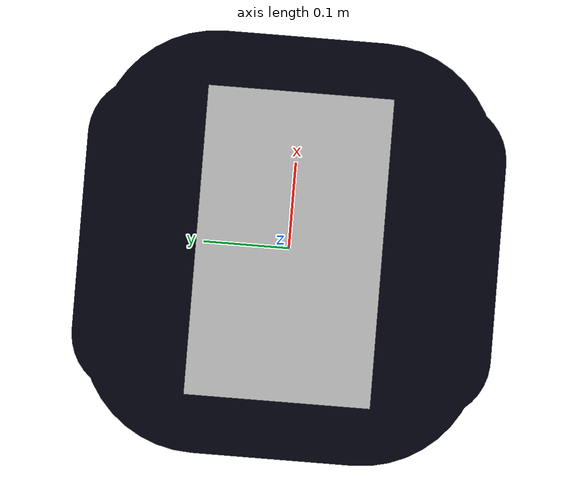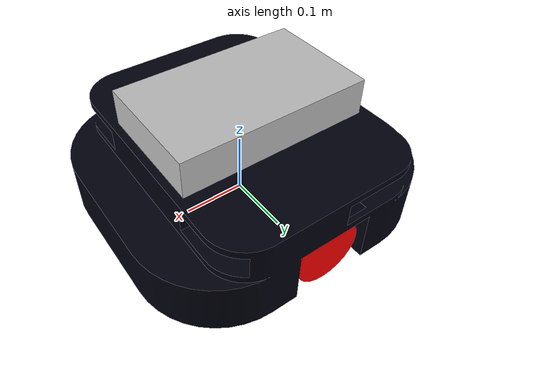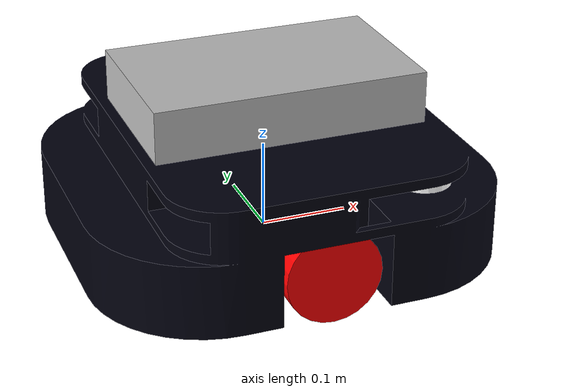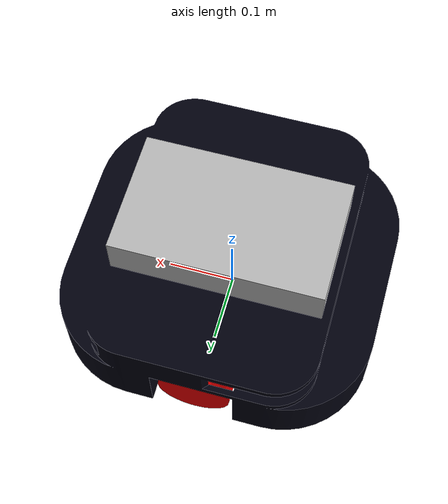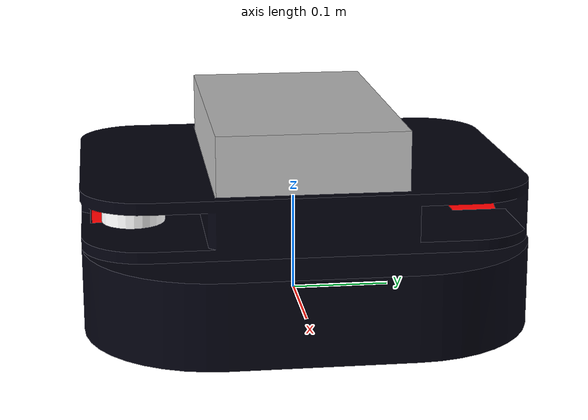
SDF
<?xml version="1.0" ?>

<sdf version="1.8">

    <model name="my_robot" canonical_link="base_link">
            <pose>0 0 0 0 0 0</pose>

            <!-- Base Link -->
            <link name="base_link">
                <pose>0 0 0 0 0 0</pose>
                <inertial>
                    <mass>18.0</mass>
                    <inertia>
                        <ixx>0.350412</ixx>
                        <ixy>0</ixy>
                        <ixz>0</ixz>
                        <iyy>0.60531</iyy>
                        <iyz>0</iyz>
                        <izz>0.31539</izz>
                    </inertia>
                </inertial>
                <visual name="visual">
                    <geometry>
                        <mesh>
                            <uri>file://agv_base.dae</uri>
                        </mesh>
                    </geometry>
                    <pose>0 0 0 0 0 1.5708</pose>
                    <material>
                        <ambient>0 0 0.0 1</ambient>
                        <diffuse>0 0 0.05 1</diffuse>
                        <specular>0 0 0.05 1</specular>
                    </material>
                </visual>
                <collision name="collision">
                    <geometry>
                        <mesh>
                            <uri>file://agv_base.dae</uri>
                        </mesh>
                    </geometry>
                    <pose>0 0 0 0 0 1.5708</pose>
                </collision>
            </link>

            <!-- Right Wheel Link -->
            <link name="left_wheel_link">
                <pose relative_to="base_link">0 0.183 0.041 0 0 0</pose>
                <inertial>
                    <mass>0.5</mass>
                    <inertia>
                        <ixx>0.000768</ixx>
                        <ixy>0</ixy>
                        <ixz>0</ixz>
                        <iyy>0.000768</iyy>
                        <iyz>0</iyz>
                        <izz>0.000702</izz>
                    </inertia>
                </inertial>
                <visual name="visual">
                    <geometry>
                        <cylinder>
                            <radius>0.053</radius>
                            <length>0.05</length>
                        </cylinder>
                    </geometry>
                    <pose>0 0 0 1.5708 0 0</pose>
                    <material>
                        <ambient>1 0 0 1</ambient>
                        <diffuse>1 0 0 1</diffuse>
                        <specular>1 0 0 1</specular>
                    </material>
                </visual>
                <collision name="collision">
                    <geometry>
                        <cylinder>
                            <radius>0.053</radius>
                            <length>0.05</length>
                        </cylinder>
                    </geometry>
                    <surface>
                        <friction>
                            <ode>
                                <mu>0.5</mu>
                                <mu2>0.5</mu2>
                            </ode>
                        </friction>
                    </surface>
                    <pose>0 0 0 1.5708 0 0</pose>
                </collision>
            </link>

            <!-- Left Wheel Link -->
            <link name="right_wheel_link">
                <pose relative_to="base_link">0 -0.183 0.041 0 0 0</pose>
                <inertial>
                    <mass>0.5</mass>
                    <inertia>
                        <ixx>0.000768</ixx>
                        <ixy>0</ixy>
                        <ixz>0</ixz>
                        <iyy>0.000768</iyy>
                        <iyz>0</iyz>
                        <izz>0.000702</izz>
                    </inertia>
                </inertial>
                <visual name="visual">
                    <geometry>
                        <cylinder>
                            <radius>0.053</radius>
                            <length>0.05</length>
                        </cylinder>
                    </geometry>
                    <pose>0 0 0 1.5708 0 0</pose>
                    <material>
                        <ambient>1 0 0 1</ambient>
                        <diffuse>1 0 0 1</diffuse>
                        <specular>1 0 0 1</specular>
                    </material>
                </visual>
                <collision name="collision">
                    <geometry>
                        <cylinder>
                            <radius>0.053</radius>
                            <length>0.05</length>
                        </cylinder>
                    </geometry>
                    <surface>
                        <friction>
                            <ode>
                                <mu>0.5</mu>
                                <mu2>0.5</mu2>
                            </ode>
                        </friction>
                    </surface>
                    <pose>0 0 0 1.5708 0 0</pose>
                </collision>
            </link>

            <!-- Right LiDAR Link -->
            <link name="lidar_link_right">
                <pose relative_to="base_link">0.115 -0.16789 0.12 0 0 0</pose>
                <visual name="visual">
                    <geometry>
                        <cylinder>
                            <radius>0.03</radius>
                            <length>0.015</length>
                        </cylinder>
                    </geometry>
                    <material>
                        <ambient>1 1 1 1</ambient>
                        <diffuse>1 1 1 1</diffuse>
                        <specular>1 1 1 1</specular>
                    </material>
                </visual>
                <collision name="collision">
                    <geometry>
                        <cylinder>
                            <radius>0.03</radius>
                            <length>0.015</length>
                        </cylinder>
                    </geometry>
                </collision>
                <sensor name="gpu_lidar1" type="gpu_lidar">
                    <pose>0 0 0 0 0 0</pose>
                    <topic>lidar1</topic>
                    <update_rate>10</update_rate>
                    <ray>
                        <scan>
                            <horizontal>
                                <samples>640</samples>
                                <resolution>1</resolution>
                                <min_angle>-3.14</min_angle>
                                <max_angle>3.14</max_angle>
                            </horizontal>
                            <vertical>
                                <samples>1</samples>
                                <resolution>0.01</resolution>
                                <min_angle>0</min_angle>
                                <max_angle>0</max_angle>
                            </vertical>
                        </scan>
                        <range>
                            <min>0.08</min>
                            <max>10.0</max>
                            <resolution>0.01</resolution>
                        </range>
                    </ray>
                    <always_on>1</always_on>
                    <visualize>true</visualize>
                </sensor>
            </link>

            <!-- Left LiDAR Link -->
            <link name="lidar_link_left">
                <pose relative_to="base_link">-0.115 0.16789 0.12 0 0 0</pose>
                <visual name="visual">
                    <geometry>
                        <cylinder>
                            <radius>0.03</radius>
                            <length>0.015</length>
                        </cylinder>
                    </geometry>
                    <material>
                        <ambient>1 1 1 1</ambient>
                        <diffuse>1 1 1 1</diffuse>
                        <specular>1 1 1 1</specular>
                    </material>
                </visual>
                <collision name="collision">
                    <geometry>
                        <cylinder>
                            <radius>0.03</radius>
                            <length>0.015</length>
                        </cylinder>
                    </geometry>
                </collision>
                <sensor name="gpu_lidar2" type="gpu_lidar">
                    <pose>0 0 0 0 0 0</pose>
                    <topic>lidar2</topic>
                    <update_rate>10</update_rate>
                    <ray>
                        <scan>
                            <horizontal>
                                <samples>640</samples>
                                <resolution>1</resolution>
                                <min_angle>-3.14</min_angle>
                                <max_angle>3.14</max_angle>
                            </horizontal>
                            <vertical>
                                <samples>1</samples>
                                <resolution>0.01</resolution>
                                <min_angle>0</min_angle>
                                <max_angle>0</max_angle>
                            </vertical>
                        </scan>
                        <range>
                            <min>0.08</min>
                            <max>10.0</max>
                            <resolution>0.01</resolution>
                        </range>
                    </ray>
                    <always_on>1</always_on>
                    <visualize>true</visualize>
                </sensor>
            </link>

            <!-- Lift Link -->
            <link name="lift_link">
                <pose>0 0 0.15 0 0 1.5708</pose>
                <inertial>
                    <mass>3.0</mass>
                    <inertia>
                        <ixx>0.025909</ixx>
                        <ixy>0</ixy>
                        <ixz>0</ixz>
                        <iyy>0.031873</iyy>
                        <iyz>0</iyz>
                        <izz>0.010964</izz>
                    </inertia>
                </inertial>
                <visual name="visual">
                    <geometry>
                        <box>
                            <size>0.184 0.306 0.1</size>
                        </box>
                    </geometry>
                    <material>
                        <ambient>0.75 0.75 0.75 1</ambient>
                        <diffuse>0.75 0.75 0.75 1</diffuse>
                        <specular>0.75 0.75 0.75 1</specular>
                    </material>
                </visual>
                <collision name="collision">
                    <geometry>
                        <box>
                            <size>0.184 0.306 0.1</size>
                        </box>
                    </geometry>
                </collision>
            </link>

            <!-- Joints -->
            <joint name="base_right_wheel_joint" type="revolute">
                <parent>base_link</parent>
                <child>right_wheel_link</child>
                <axis>
                    <xyz>0 1 0</xyz>
                    <limit>
                        <lower>-1.79769e+308</lower>
                        <upper>1.79769e+308</upper>
                    </limit>
                </axis>
            </joint>

            <joint name="base_left_wheel_joint" type="revolute">
                <parent>base_link</parent>
                <child>left_wheel_link</child>
                <axis>
                    <xyz>0 1 0</xyz>
                    <limit>
                        <lower>-1.79769e+308</lower>
                        <upper>1.79769e+308</upper>
                    </limit>
                </axis>
            </joint>

            <joint name="lidar_right_base_joint" type="fixed">
                <parent>base_link</parent>
                <child>lidar_link_right</child>
            </joint>

            <joint name="lidar_left_base_joint" type="fixed">
                <parent>base_link</parent>
                <child>lidar_link_left</child>
            </joint>

            <joint name="lift_base_joint" type="prismatic">
                <parent>base_link</parent>
                <child>lift_link</child>
                <axis>
                    <xyz>0 0 1</xyz>
                    <limit>
                        <lower>0.155</lower>
                        <upper>0.187</upper>
                        <effort>1000.0</effort>
                        <velocity>1.0</velocity>
                    </limit>
                </axis>
            </joint>

            <!-- Differential Drive Plugin -->
            <plugin
                filename="gz-sim-diff-drive-system"
                name="gz::sim::systems::DiffDrive">
                <left_joint>base_left_wheel_joint</left_joint>
                <right_joint>base_right_wheel_joint</right_joint>
                <wheel_separation>0.366</wheel_separation>
                <wheel_radius>0.053</wheel_radius>
                <odom_publish_frequency>10</odom_publish_frequency>
                <topic>cmd_vel</topic>
            </plugin>

            <!-- Sensors Plugin -->
            <plugin
                filename="gz-sim-sensors-system"
                name="gz::sim::systems::Sensors">
                <render_engine>ogre2</render_engine>
            </plugin>
        </model>
</sdf>
